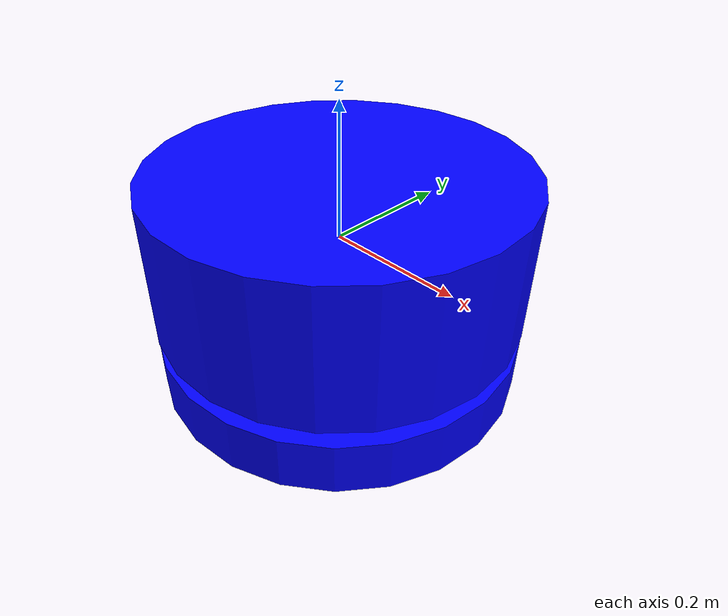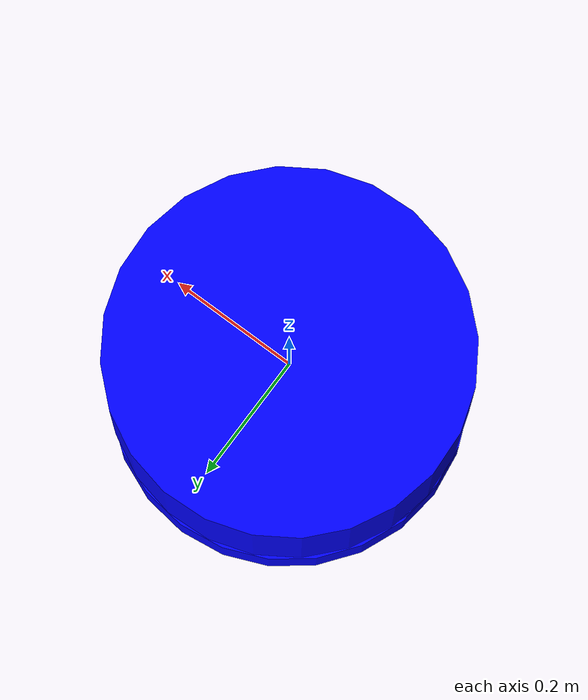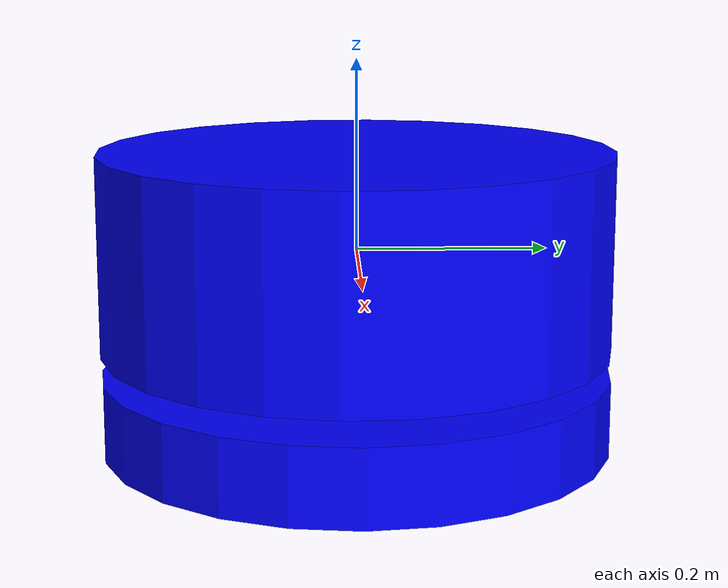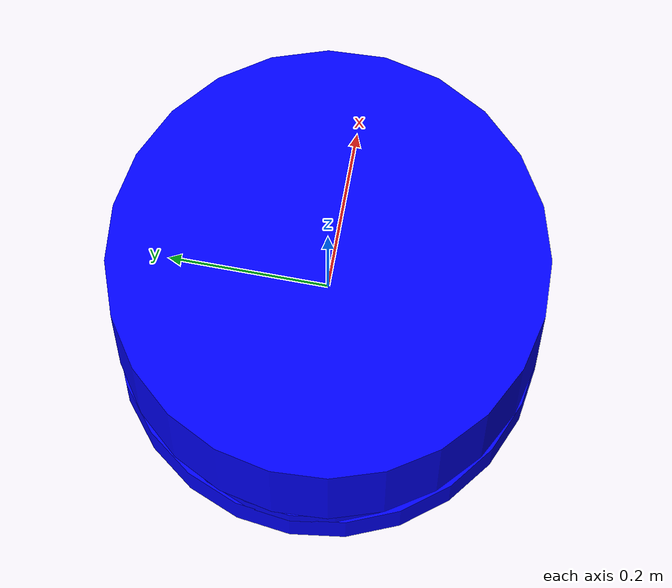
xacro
<?xml version="1.0"?>
<robot xmlns:xacro="http://ros.org/wiki/xacro">

  <xacro:property name="radius" value="0.27"/>
  <xacro:property name="small_radius" value="0.22"/>

  <link name="base_link">
    <visual>
      <geometry>
        <cylinder length="0.21" radius="${radius}"/>
      </geometry>
      <origin rpy="0 0 0.18" xyz="0 0 0"/>
      <material name="blue">
        <color rgba="0 0 1 1"/>
      </material>
    </visual>

    <collision>
      <geometry>
        <cylinder length="0.21" radius="${radius}"/>
      </geometry>
      <origin rpy="0 0 0" xyz="0 0 0"/>
      <material name="blue">
        <color rgba="0 0 1 1"/>
      </material>
    </collision>

    <inertial>
        <origin xyz="0.0 0.0 0.0" rpy="0.0 0.0 0.0" />
        <mass value="50" />
         <inertia ixx="0.1"  ixy="0"  ixz="0" iyy="0.1" iyz="0" izz="0.1" />
    </inertial>
  </link>

  <gazebo reference="base_link">
    <material>Gazebo/White</material>
    <kp>100000000.0</kp>
    <kd>10.0</kd>
    <mu1>0.0</mu1>
    <mu2>0.0</mu2>
    <fdir1>1 0 0</fdir1>
    <maxVel>10.0</maxVel>
    <minDepth>0.0005</minDepth>
    <laserRetro>0</laserRetro>
  </gazebo>

  <link name="base_footprint">
    <visual>
      <geometry>
        <cylinder length="0.08" radius="${radius}"/>
      </geometry>
      <origin rpy="0 0 0" xyz="0 0 0"/>
      <material name="blue">
        <color rgba="0 0 1 1"/>
      </material>
    </visual>

    <collision>
      <geometry>
        <cylinder length="0.08" radius="${radius}"/>
      </geometry>
      <origin rpy="0 0 0" xyz="0 0 0"/>
      <material name="blue">
        <color rgba="0 0 1 1"/>
      </material>
    </collision>

    <inertial>
        <origin xyz="0.0 0.0 0.0" rpy="0.0 0.0 0.0" />
        <mass value="50" />
         <inertia ixx="0.1"  ixy="0"  ixz="0" iyy="0.1" iyz="0" izz="0.1" />
    </inertial>
  </link>

  <gazebo reference="base_footprint">
    <material>Gazebo/White</material>
    <kp>100000000.0</kp>
    <kd>10.0</kd>
    <mu1>0.0</mu1>
    <mu2>0.0</mu2>
    <fdir1>1 0 0</fdir1>
    <maxVel>10.0</maxVel>
    <minDepth>0.0005</minDepth>
    <laserRetro>0</laserRetro>
  </gazebo>

  <joint name="base_footprint_joint" type="fixed">
    <origin xyz="0 0 -0.17" rpy="0 0 0" />
    <child link="base_footprint" />
    <parent link="base_link"/>
  </joint>

  <link name="base_mid">
    <visual>
      <geometry>
        <cylinder length="0.03" radius="${small_radius}"/>
      </geometry>
      <origin rpy="0 0 0" xyz="0 0 0"/>
      <material name="blue">
        <color rgba="0 0 1 1"/>
      </material>
    </visual>

    <collision>
      <geometry>
        <cylinder length="0.03" radius="${small_radius}"/>
      </geometry>
      <origin rpy="0 0 0" xyz="0 0 0"/>
      <material name="blue">
        <color rgba="0 0 1 1"/>
      </material>
    </collision>

    <inertial>
        <origin xyz="0.0 0.0 0.0" rpy="0.0 0.0 0.0" />
        <mass value="50" />
         <inertia ixx="0.1"  ixy="0"  ixz="0" iyy="0.1" iyz="0" izz="0.1" />
    </inertial>
  </link>

  <gazebo reference="base_mid">
    <material>Gazebo/White</material>
    <kp>100000000.0</kp>
    <kd>10.0</kd>
    <mu1>0.0</mu1>
    <mu2>0.0</mu2>
    <fdir1>1 0 0</fdir1>
    <maxVel>10.0</maxVel>
    <minDepth>0.0005</minDepth>
    <laserRetro>0</laserRetro>
  </gazebo>

  <joint name="base_mid_joint" type="fixed">
    <origin xyz="-0.05 0 0.05" rpy="0 0 0" />
    <child link="base_mid" />
    <parent link="base_footprint"/>
  </joint>

</robot>
